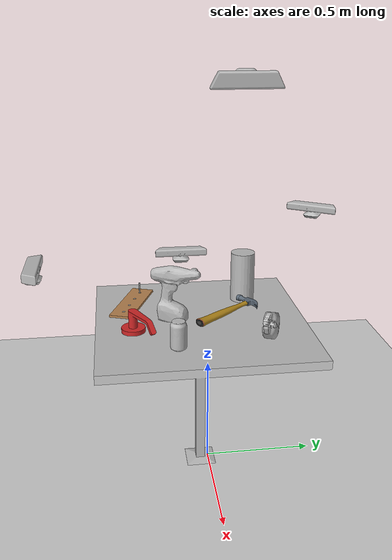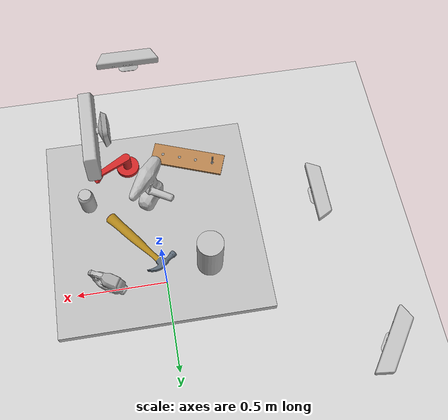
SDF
<sdf version="1.7">
 <world name="default">
  <light name="sun" type="directional">
   <pose>0 0 10 0 -0 0</pose>
   <diffuse>0.8 0.8 0.8 1</diffuse>
   <specular>0.2 0.2 0.2 1</specular>
   <attenuation>
    <range>1000</range>
    <constant>0.9</constant>
    <linear>0.01</linear>
    <quadratic>0.001</quadratic>
   </attenuation>
   <direction>-0.5 0.1 -0.9</direction>
   <spot><inner_angle>0</inner_angle><outer_angle>0</outer_angle><falloff>0</falloff></spot>
  </light>
  <model name="ground_plane">
   <static>1</static>
   <link name="link">
    <collision name="collision">
     <geometry><plane><normal>0 0 1</normal><size>100 100</size></plane></geometry>
     <surface><friction><ode><mu>100</mu><mu2>50</mu2></ode></friction></surface>
    </collision>
    <visual name="visual">
     <cast_shadows>0</cast_shadows>
     <geometry><plane><normal>0 0 1</normal><size>100 100</size></plane></geometry>
     <material>
      <script><uri>file://media/materials/scripts/gazebo.material</uri><name>Gazebo/Grey</name></script>
     </material>
    </visual>
   </link>
  </model>
  <gravity>0 0 -9.8</gravity>
  <magnetic_field>6e-06 2.3e-05 -4.2e-05</magnetic_field>
  <atmosphere type="adiabatic"/>
  <physics type="ode">
   <max_step_size>0.001</max_step_size>
   <real_time_factor>1</real_time_factor>
   <real_time_update_rate>1000</real_time_update_rate>
  </physics>
  <scene><ambient>0.4 0.4 0.4 1</ambient><background>0.7 0.7 0.7 1</background><shadows>1</shadows></scene>
  <spherical_coordinates>
   <surface_model>EARTH_WGS84</surface_model>
   <latitude_deg>0</latitude_deg>
   <longitude_deg>0</longitude_deg>
   <elevation>0</elevation>
   <heading_deg>0</heading_deg>
  </spherical_coordinates>
  <model name="cafe_table">
   <static>1</static>
   <link name="link">
    <collision name="surface">
     <pose>0 0 0.755 0 -0 0</pose>
     <geometry><box><size>0.913 0.913 0.04</size></box></geometry>
    </collision>
    <collision name="column">
     <pose>0 0 0.37 0 -0 0</pose>
     <geometry><box><size>0.042 0.042 0.74</size></box></geometry>
    </collision>
    <collision name="base">
     <pose>0 0 0.02 0 -0 0</pose>
     <geometry><box><size>0.56 0.56 0.04</size></box></geometry>
    </collision>
    <visual name="visual">
     <geometry><mesh><uri>model://cafe_table/meshes/cafe_table.dae</uri></mesh></geometry>
    </visual>
   </link>
   <pose>0.00837 -0.036719 -0.04443 0 -0 0</pose>
  </model>
  <model name="beer">
   <link name="link">
    <pose>0 0 0.115 0 -0 0</pose>
    <inertial>
     <mass>0.39</mass>
     <inertia><ixx>0.00058</ixx><ixy>0</ixy><ixz>0</ixz><iyy>0.00058</iyy><iyz>0</iyz><izz>0.00019</izz></inertia>
    </inertial>
    <collision name="collision">
     <geometry><cylinder><radius>0.055</radius><length>0.23</length></cylinder></geometry>
    </collision>
    <visual name="visual">
     <geometry><cylinder><radius>0.055</radius><length>0.23</length></cylinder></geometry>
     <material>
      <script>
       <uri>model://beer/materials/scripts</uri>
       <uri>model://beer/materials/textures</uri>
       <name>Beer/Diffuse</name>
      </script>
     </material>
    </visual>
   </link>
   <pose>-0.201268 0.190471 0.730562 1e-06 -2.6e-05 -0.043566</pose>
  </model>
  <model name="hammer">
   <static>1</static>
   <link name="link">
    <collision name="collision">
     <geometry><mesh><uri>model://hammer/meshes/hammer.dae</uri></mesh></geometry>
    </collision>
    <visual name="visual"><geometry><mesh><uri>model://hammer/meshes/hammer.dae</uri></mesh></geometry></visual>
   </link>
   <pose>0.041273 0.114904 0.798165 0 -0 0.671982</pose>
  </model>
  <model name="pr2_gripper">
   <pose>-0.146313 1.33047 0.530983 1.62042 -0.541628 -0.50933</pose>
   <link name="r_wrist_roll_link">
    <pose>0.771 -0.188 0.790675 0 -0 0</pose>
    <inertial>
     <pose>0.056408 0.000451 -0.001014 0 -0 0</pose>
     <inertia>
      <ixx>0.011352</ixx>
      <ixy>-1.6e-05</ixy>
      <ixz>-1e-06</ixz>
      <iyy>0.011677</iyy>
      <iyz>-1e-06</iyz>
      <izz>0.011866</izz>
     </inertia>
     <mass>0.68107</mass>
    </inertial>
    <collision name="r_wrist_roll_link_geom">
     <geometry>
      <mesh>
       <uri>model://pr2/meshes/forearm_v0/wrist_roll_L.stl</uri>
       <scale>1 1 1</scale>
       <uri>__default__</uri>
      </mesh>
     </geometry>
     <surface>
      <friction><ode><mu>-1</mu><mu2>-1</mu2><fdir1>0 0 0</fdir1><slip1>0</slip1><slip2>0</slip2></ode></friction>
      <bounce><restitution_coefficient>0</restitution_coefficient><threshold>100000</threshold></bounce>
      <contact>
       <ode>
        <soft_cfm>0</soft_cfm>
        <soft_erp>0.2</soft_erp>
        <kp>1e+12</kp>
        <kd>1</kd>
        <max_vel>0</max_vel>
        <min_depth>0.001</min_depth>
       </ode>
      </contact>
     </surface>
    </collision>
    <visual name="r_wrist_roll_link_geom_visual">
     <geometry>
      <mesh><uri>model://pr2/meshes/forearm_v0/wrist_roll.stl</uri><scale>1 1 1</scale><uri>__default__</uri></mesh>
     </geometry>
     <material><script><name>__default__</name><uri>__default__</uri></script></material>
    </visual>
    <visual name="r_wrist_roll_link_geom_r_gripper_palm_link_visual">
     <geometry>
      <mesh>
       <uri>model://pr2/meshes/gripper_v0/gripper_palm.dae</uri>
       <scale>1 1 1</scale>
       <uri>__default__</uri>
      </mesh>
     </geometry>
    </visual>
   </link>
   <link name="r_gripper_l_finger_link">
    <pose>0.84791 -0.178 0.790675 0 -0 0</pose>
    <inertial>
     <pose>0.03598 0.0173 -0.00164 0 -0 0</pose>
     <inertia>
      <ixx>7.8e-05</ixx>
      <ixy>1e-06</ixy>
      <ixz>-1e-05</ixz>
      <iyy>0.000197</iyy>
      <iyz>-3e-06</iyz>
      <izz>0.000181</izz>
     </inertia>
     <mass>0.17126</mass>
    </inertial>
    <collision name="r_gripper_l_finger_link_geom">
     <geometry>
      <mesh><uri>model://pr2/meshes/gripper_v0/l_finger.stl</uri><scale>1 1 1</scale><uri>__default__</uri></mesh>
     </geometry>
     <surface>
      <friction><ode><mu>500</mu><mu2>500</mu2><fdir1>0 0 0</fdir1><slip1>0</slip1><slip2>0</slip2></ode></friction>
      <bounce><restitution_coefficient>0</restitution_coefficient><threshold>100000</threshold></bounce>
      <contact>
       <ode>
        <soft_cfm>0</soft_cfm>
        <soft_erp>0.2</soft_erp>
        <kp>1e+06</kp>
        <kd>1</kd>
        <max_vel>0</max_vel>
        <min_depth>0.001</min_depth>
       </ode>
      </contact>
     </surface>
    </collision>
    <visual name="r_gripper_l_finger_link_geom_visual">
     <geometry>
      <mesh><uri>model://pr2/meshes/gripper_v0/l_finger.dae</uri><scale>1 1 1</scale><uri>__default__</uri></mesh>
     </geometry>
    </visual>
   </link>
   <link name="r_gripper_l_finger_tip_link">
    <pose>0.93928 -0.17305 0.790675 0 -0 0</pose>
    <inertial>
     <pose>0.00423 0.00284 0 0 -0 0</pose>
     <inertia><ixx>8e-06</ixx><ixy>6e-06</ixy><ixz>0</ixz><iyy>1e-05</iyy><iyz>0</iyz><izz>1.5e-05</izz></inertia>
     <mass>0.04419</mass>
    </inertial>
    <collision name="r_gripper_l_finger_tip_link_geom">
     <geometry>
      <mesh>
       <uri>model://pr2/meshes/gripper_v0/l_finger_tip.stl</uri>
       <scale>1 1 1</scale>
       <uri>__default__</uri>
      </mesh>
     </geometry>
     <surface>
      <friction><ode><mu>500</mu><mu2>500</mu2><fdir1>0 0 0</fdir1><slip1>0</slip1><slip2>0</slip2></ode></friction>
      <bounce><restitution_coefficient>0</restitution_coefficient><threshold>100000</threshold></bounce>
      <contact>
       <ode>
        <soft_cfm>0</soft_cfm>
        <soft_erp>0.2</soft_erp>
        <kp>1e+07</kp>
        <kd>1</kd>
        <max_vel>0</max_vel>
        <min_depth>0.001</min_depth>
       </ode>
      </contact>
     </surface>
    </collision>
    <visual name="r_gripper_l_finger_tip_link_geom_visual">
     <geometry>
      <mesh>
       <uri>model://pr2/meshes/gripper_v0/l_finger_tip.dae</uri>
       <scale>1 1 1</scale>
       <uri>__default__</uri>
      </mesh>
     </geometry>
    </visual>
    <sensor name="r_gripper_l_finger_tip_contact_sensor" type="contact">
     <contact><collision>r_gripper_l_finger_tip_link_geom</collision><topic>__default_topic__</topic></contact>
     <always_on>0</always_on>
     <update_rate>100</update_rate>
     <visualize>0</visualize>
    </sensor>
   </link>
   <link name="r_gripper_motor_slider_link">
    <pose>0.93928 -0.188 0.790675 0 -0 0</pose>
    <inertial>
     <inertia><ixx>0.001</ixx><ixy>0</ixy><ixz>0</ixz><iyy>0.001</iyy><iyz>0</iyz><izz>0.001</izz></inertia>
     <mass>0.01</mass>
    </inertial>
   </link>
   <link name="r_gripper_motor_screw_link">
    <pose>0.93928 -0.188 0.790675 0 -0 0</pose>
    <inertial>
     <inertia><ixx>0.0001</ixx><ixy>0</ixy><ixz>0</ixz><iyy>0.0001</iyy><iyz>0</iyz><izz>0.0001</izz></inertia>
     <mass>0.01</mass>
    </inertial>
   </link>
   <link name="r_gripper_r_finger_link">
    <pose>0.84791 -0.198 0.790675 0 -0 0</pose>
    <inertial>
     <pose>0.03576 -0.01736 -0.00095 0 -0 0</pose>
     <inertia>
      <ixx>7.7e-05</ixx>
      <ixy>-2e-06</ixy>
      <ixz>-8e-06</ixz>
      <iyy>0.000198</iyy>
      <iyz>2e-06</iyz>
      <izz>0.000181</izz>
     </inertia>
     <mass>0.17389</mass>
    </inertial>
    <collision name="r_gripper_r_finger_link_geom">
     <pose>0 0 0 -3.14159 -0 0</pose>
     <geometry>
      <mesh><uri>model://pr2/meshes/gripper_v0/l_finger.stl</uri><scale>1 1 1</scale><uri>__default__</uri></mesh>
     </geometry>
     <surface>
      <friction><ode><mu>500</mu><mu2>500</mu2><fdir1>0 0 0</fdir1><slip1>0</slip1><slip2>0</slip2></ode></friction>
      <bounce><restitution_coefficient>0</restitution_coefficient><threshold>100000</threshold></bounce>
      <contact>
       <ode>
        <soft_cfm>0</soft_cfm>
        <soft_erp>0.2</soft_erp>
        <kp>1e+06</kp>
        <kd>1</kd>
        <max_vel>0</max_vel>
        <min_depth>0.001</min_depth>
       </ode>
      </contact>
     </surface>
    </collision>
    <visual name="r_gripper_r_finger_link_geom_visual">
     <pose>0 0 0 -3.14159 0 0</pose>
     <geometry>
      <mesh><uri>model://pr2/meshes/gripper_v0/l_finger.dae</uri><scale>1 1 1</scale><uri>__default__</uri></mesh>
     </geometry>
    </visual>
   </link>
   <link name="r_gripper_r_finger_tip_link">
    <pose>0.93928 -0.20295 0.790675 0 -0 0</pose>
    <inertial>
     <pose>0.00423 -0.00284 0 0 -0 0</pose>
     <inertia><ixx>8e-06</ixx><ixy>-6e-06</ixy><ixz>0</ixz><iyy>1e-05</iyy><iyz>0</iyz><izz>1.5e-05</izz></inertia>
     <mass>0.04419</mass>
    </inertial>
    <collision name="r_gripper_r_finger_tip_link_geom">
     <pose>0 0 0 -3.14159 -0 0</pose>
     <geometry>
      <mesh>
       <uri>model://pr2/meshes/gripper_v0/l_finger_tip.stl</uri>
       <scale>1 1 1</scale>
       <uri>__default__</uri>
      </mesh>
     </geometry>
     <surface>
      <friction><ode><mu>500</mu><mu2>500</mu2><fdir1>0 0 0</fdir1><slip1>0</slip1><slip2>0</slip2></ode></friction>
      <bounce><restitution_coefficient>0</restitution_coefficient><threshold>100000</threshold></bounce>
      <contact>
       <ode>
        <soft_cfm>0</soft_cfm>
        <soft_erp>0.2</soft_erp>
        <kp>1e+07</kp>
        <kd>1</kd>
        <max_vel>0</max_vel>
        <min_depth>0.001</min_depth>
       </ode>
      </contact>
     </surface>
    </collision>
    <visual name="r_gripper_r_finger_tip_link_geom_visual">
     <pose>0 0 0 -3.14159 0 0</pose>
     <geometry>
      <mesh>
       <uri>model://pr2/meshes/gripper_v0/l_finger_tip.dae</uri>
       <scale>1 1 1</scale>
       <uri>__default__</uri>
      </mesh>
     </geometry>
    </visual>
    <sensor name="r_gripper_r_finger_tip_contact_sensor" type="contact">
     <contact><collision>r_gripper_r_finger_tip_link_geom</collision><topic>__default_topic__</topic></contact>
     <always_on>0</always_on>
     <update_rate>100</update_rate>
     <visualize>0</visualize>
    </sensor>
   </link>
   <link name="torso_lift_motor_screw_link">
    <pose>-0.15 0 0.751 0 -0 0</pose>
    <inertial>
     <inertia><ixx>0.001</ixx><ixy>0</ixy><ixz>0</ixz><iyy>0.001</iyy><iyz>0</iyz><izz>0.001</izz></inertia>
     <mass>1</mass>
    </inertial>
   </link>
   <link name="r_gripper_l_parallel_link">
    <pose>0.82991 -0.157 0.790675 0 -0 0</pose>
    <inertial>
     <pose>0.03598 0.0173 -0.00164 0 -0 0</pose>
     <inertia>
      <ixx>7.8e-05</ixx>
      <ixy>1e-06</ixy>
      <ixz>-1e-05</ixz>
      <iyy>0.000197</iyy>
      <iyz>-3e-06</iyz>
      <izz>0.000181</izz>
     </inertia>
     <mass>0.17126</mass>
    </inertial>
   </link>
   <link name="r_gripper_r_parallel_link">
    <pose>0.82991 -0.219 0.790675 0 -0 0</pose>
    <inertial>
     <pose>0.03576 -0.01736 -0.00095 0 -0 0</pose>
     <inertia>
      <ixx>7.7e-05</ixx>
      <ixy>-2e-06</ixy>
      <ixz>-8e-06</ixz>
      <iyy>0.000198</iyy>
      <iyz>2e-06</iyz>
      <izz>0.000181</izz>
     </inertia>
     <mass>0.17389</mass>
    </inertial>
   </link>
   <joint name="r_gripper_l_finger_joint" type="revolute">
    <parent>r_wrist_roll_link</parent>
    <child>r_gripper_l_finger_link</child>
    <axis>
     <dynamics>
      <damping>0.02</damping>
      <friction>0</friction>
      <spring_reference>0</spring_reference>
      <spring_stiffness>0</spring_stiffness>
     </dynamics>
     <limit><lower>0</lower><upper>0.548</upper><effort>0</effort><velocity>0</velocity></limit>
     <xyz expressed_in="__model__">0 0 1</xyz>
    </axis>
   </joint>
   <joint name="r_gripper_l_finger_tip_joint" type="revolute">
    <parent>r_gripper_l_finger_link</parent>
    <child>r_gripper_l_finger_tip_link</child>
    <axis>
     <dynamics>
      <damping>0.001</damping>
      <friction>0</friction>
      <spring_reference>0</spring_reference>
      <spring_stiffness>0</spring_stiffness>
     </dynamics>
     <limit><lower>0</lower><upper>0.548</upper><effort>0</effort><velocity>0</velocity></limit>
     <xyz expressed_in="__model__">0 0 -1</xyz>
    </axis>
   </joint>
   <joint name="r_gripper_motor_slider_joint" type="prismatic">
    <parent>r_wrist_roll_link</parent>
    <child>r_gripper_motor_slider_link</child>
    <axis>
     <dynamics>
      <damping>0</damping>
      <friction>0</friction>
      <spring_reference>0</spring_reference>
      <spring_stiffness>0</spring_stiffness>
     </dynamics>
     <limit><lower>-0.1</lower><upper>0.1</upper><effort>0</effort><velocity>0</velocity></limit>
     <xyz expressed_in="__model__">1 0 0</xyz>
    </axis>
   </joint>
   <joint name="r_gripper_motor_screw_joint" type="revolute">
    <parent>r_gripper_motor_slider_link</parent>
    <child>r_gripper_motor_screw_link</child>
    <axis>
     <dynamics>
      <damping>0.0001</damping>
      <friction>0</friction>
      <spring_reference>0</spring_reference>
      <spring_stiffness>0</spring_stiffness>
     </dynamics>
     <limit><lower>-1e+16</lower><upper>1e+16</upper><effort>0</effort><velocity>0</velocity></limit>
     <xyz expressed_in="__model__">0 1 0</xyz>
    </axis>
   </joint>
   <joint name="r_gripper_r_finger_joint" type="revolute">
    <parent>r_wrist_roll_link</parent>
    <child>r_gripper_r_finger_link</child>
    <axis>
     <dynamics>
      <damping>0.02</damping>
      <friction>0</friction>
      <spring_reference>0</spring_reference>
      <spring_stiffness>0</spring_stiffness>
     </dynamics>
     <limit><lower>0</lower><upper>0.548</upper><effort>0</effort><velocity>0</velocity></limit>
     <xyz expressed_in="__model__">0 0 -1</xyz>
    </axis>
   </joint>
   <joint name="r_gripper_r_finger_tip_joint" type="revolute">
    <parent>r_gripper_r_finger_link</parent>
    <child>r_gripper_r_finger_tip_link</child>
    <axis>
     <dynamics>
      <damping>0.001</damping>
      <friction>0</friction>
      <spring_reference>0</spring_reference>
      <spring_stiffness>0</spring_stiffness>
     </dynamics>
     <limit><lower>0</lower><upper>0.548</upper><effort>0</effort><velocity>0</velocity></limit>
     <xyz expressed_in="__model__">0 0 1</xyz>
    </axis>
   </joint>
   <joint name="r_gripper_r_screw_screw_joint" type="screw">
    <parent>r_gripper_r_finger_tip_link</parent>
    <child>r_gripper_motor_screw_link</child>
    <thread_pitch>-3141.6</thread_pitch>
    <axis>
     <dynamics>
      <damping>0</damping>
      <friction>0</friction>
      <spring_reference>0</spring_reference>
      <spring_stiffness>0</spring_stiffness>
     </dynamics>
     <limit><lower>-1e+16</lower><upper>1e+16</upper><effort>0</effort><velocity>0</velocity></limit>
     <xyz expressed_in="__model__">0 1 0</xyz>
    </axis>
   </joint>
   <joint name="r_gripper_l_screw_screw_joint" type="screw">
    <parent>r_gripper_l_finger_tip_link</parent>
    <child>r_gripper_motor_screw_link</child>
    <thread_pitch>3141.6</thread_pitch>
    <axis>
     <dynamics>
      <damping>0</damping>
      <friction>0</friction>
      <spring_reference>0</spring_reference>
      <spring_stiffness>0</spring_stiffness>
     </dynamics>
     <limit><lower>-1e+16</lower><upper>1e+16</upper><effort>0</effort><velocity>0</velocity></limit>
     <xyz expressed_in="__model__">0 1 0</xyz>
    </axis>
   </joint>
   <joint name="r_gripper_r_parallel_root_joint" type="revolute">
    <pose>0.05891 -0.031 0 0 -0 0</pose>
    <parent>r_gripper_r_parallel_link</parent>
    <child>r_wrist_roll_link</child>
    <axis>
     <dynamics>
      <damping>0.2</damping>
      <friction>0</friction>
      <spring_reference>0</spring_reference>
      <spring_stiffness>0</spring_stiffness>
     </dynamics>
     <limit><lower>-1e+16</lower><upper>1e+16</upper><effort>0</effort><velocity>0</velocity></limit>
     <xyz expressed_in="__model__">0 0 -1</xyz>
    </axis>
   </joint>
   <joint name="r_gripper_l_parallel_root_joint" type="revolute">
    <pose>0.05891 0.031 0 0 -0 0</pose>
    <parent>r_gripper_l_parallel_link</parent>
    <child>r_wrist_roll_link</child>
    <axis>
     <dynamics>
      <damping>0.2</damping>
      <friction>0</friction>
      <spring_reference>0</spring_reference>
      <spring_stiffness>0</spring_stiffness>
     </dynamics>
     <limit><lower>-1e+16</lower><upper>1e+16</upper><effort>0</effort><velocity>0</velocity></limit>
     <xyz expressed_in="__model__">0 0 1</xyz>
    </axis>
   </joint>
   <joint name="r_gripper_r_parallel_tip_joint" type="revolute">
    <pose>-0.018 -0.021 0 0 -0 0</pose>
    <parent>r_gripper_r_parallel_link</parent>
    <child>r_gripper_r_finger_tip_link</child>
    <axis>
     <dynamics>
      <damping>0</damping>
      <friction>0</friction>
      <spring_reference>0</spring_reference>
      <spring_stiffness>0</spring_stiffness>
     </dynamics>
     <limit><lower>-1e+16</lower><upper>1e+16</upper><effort>0</effort><velocity>0</velocity></limit>
     <xyz expressed_in="__model__">0 0 1</xyz>
    </axis>
   </joint>
   <joint name="r_gripper_l_parallel_tip_joint" type="revolute">
    <pose>-0.018 0.021 0 0 -0 0</pose>
    <parent>r_gripper_l_parallel_link</parent>
    <child>r_gripper_l_finger_tip_link</child>
    <axis>
     <dynamics>
      <damping>0</damping>
      <friction>0</friction>
      <spring_reference>0</spring_reference>
      <spring_stiffness>0</spring_stiffness>
     </dynamics>
     <limit><lower>-1e+16</lower><upper>1e+16</upper><effort>0</effort><velocity>0</velocity></limit>
     <xyz expressed_in="__model__">0 0 1</xyz>
    </axis>
   </joint>
   <joint name="r_gripper_joint" type="prismatic">
    <parent>r_gripper_r_finger_tip_link</parent>
    <child>r_gripper_l_finger_tip_link</child>
    <axis>
     <dynamics>
      <damping>0</damping>
      <friction>0</friction>
      <spring_reference>0</spring_reference>
      <spring_stiffness>0</spring_stiffness>
     </dynamics>
     <limit><lower>-1e+16</lower><upper>1e+16</upper><effort>0</effort><velocity>0</velocity></limit>
     <xyz expressed_in="__model__">0 1 0</xyz>
    </axis>
   </joint>
   <static>0</static>
  </model>
  <model name="coke_can">
   <link name="link">
    <inertial>
     <pose>0 0 0.06 0 -0 0</pose>
     <mass>0.39</mass>
     <inertia>
      <ixx>0.00055575</ixx>
      <ixy>0</ixy>
      <ixz>0</ixz>
      <iyy>0.00055575</iyy>
      <iyz>0</iyz>
      <izz>0.0001755</izz>
     </inertia>
    </inertial>
    <collision name="collision">
     <pose>0.003937 0.004724 -0.18 0 -0 0</pose>
     <geometry><mesh><uri>model://coke_can/meshes/coke_can.dae</uri></mesh></geometry>
     <surface>
      <friction><ode><mu>1</mu><mu2>1</mu2></ode></friction>
      <contact><ode><kp>1e+07</kp><kd>1</kd><min_depth>0.001</min_depth><max_vel>0.1</max_vel></ode></contact>
     </surface>
    </collision>
    <visual name="visual">
     <pose>0.003937 0.004724 -0.18 0 -0 0</pose>
     <geometry><mesh><uri>model://coke_can/meshes/coke_can.dae</uri></mesh></geometry>
    </visual>
   </link>
   <pose>0.287288 -0.15983 0.728001 -0.010452 0.003735 0.009027</pose>
  </model>
  <model name="drill">
   <link name="link">
    <inertial>
     <pose>-0.00637 -0.008 0.13254 0 -0 0</pose>
     <inertia>
      <ixx>0.0133113</ixx>
      <ixy>-0.00030365</ixy>
      <ixz>-0.00034148</ixz>
      <iyy>0.0115766</iyy>
      <iyz>0.00088073</iyz>
      <izz>0.00378028</izz>
     </inertia>
     <mass>1.50252</mass>
    </inertial>
    <collision name="collision">
     <pose>0 0 -0.09 0 -0 0</pose>
     <geometry><mesh><uri>model://cordless_drill/meshes/cordless_drill.stl</uri></mesh></geometry>
     <surface><contact><ode><max_vel>0.1</max_vel><min_depth>0.001</min_depth></ode></contact></surface>
    </collision>
    <visual name="visual">
     <pose>0 0 -0.09 0 -0 0</pose>
     <geometry><mesh><uri>model://cordless_drill/meshes/cordless_drill.dae</uri></mesh></geometry>
    </visual>
   </link>
   <pose>0.017156 -0.152005 0.728499 0.000134 -0.000218 -0.610176</pose>
  </model>
  <model name="kinect_ros">
   <pose>-0.694527 -0.044949 0.801764 0 -0 0</pose>
   <link name="link">
    <inertial>
     <mass>0.1</mass>
     <inertia><ixx>1</ixx><ixy>0</ixy><ixz>0</ixz><iyy>1</iyy><iyz>0</iyz><izz>1</izz></inertia>
    </inertial>
    <collision name="collision"><geometry><box><size>0.073 0.276 0.072</size></box></geometry></collision>
    <visual name="visual"><geometry><mesh><uri>model://kinect/meshes/kinect.dae</uri></mesh></geometry></visual>
    <sensor name="stereocamera" type="multicamera">
     <always_on>1</always_on>
     <update_rate>10</update_rate>
     <visualize>0</visualize>
     <camera name="left">
      <horizontal_fov>1.047</horizontal_fov>
      <image><width>320</width><height>240</height></image>
      <clip><near>0.1</near><far>100</far></clip>
     </camera>
     <camera name="right">
      <pose>0 -0.07 0 0 -0 0</pose>
      <horizontal_fov>1.047</horizontal_fov>
      <image><width>320</width><height>240</height></image>
      <clip><near>0.1</near><far>100</far></clip>
     </camera>
     <plugin name="stereo_camera_controller" filename="libgazebo_ros_multicamera.so">
      <cameraName>stereocamera</cameraName>
      <alwaysOn>1</alwaysOn>
      <updateRate>10</updateRate>
      <cameraName>stereocamera</cameraName>
      <imageTopicName>image_raw</imageTopicName>
      <cameraInfoTopicName>camera_info</cameraInfoTopicName>
      <frameName>camera_link_optical</frameName>
      <baseline>0.07</baseline>
      <distortion_k1>0.0</distortion_k1>
      <distortion_k2>0.0</distortion_k2>
      <distortion_k3>0.0</distortion_k3>
      <distortion_t1>0.0</distortion_t1>
      <distortion_t2>0.0</distortion_t2>
     </plugin>
    </sensor>
    <sensor name="camera" type="depth">
     <always_on>1</always_on>
     <update_rate>30</update_rate>
     <camera>
      <horizontal_fov>1.39626</horizontal_fov>
      <image><format>B8G8R8</format><width>640</width><height>480</height></image>
      <clip><near>0.4</near><far>16</far></clip>
     </camera>
     <plugin name="camera_plugin" filename="libgazebo_ros_openni_kinect.so">
      <baseline>0.2</baseline>
      <alwaysOn>1</alwaysOn>
      <updateRate>0.0</updateRate>
      <cameraName>camera_ir</cameraName>
      <imageTopicName>/camera/color/image_raw</imageTopicName>
      <cameraInfoTopicName>/camera/color/camera_info</cameraInfoTopicName>
      <depthImageTopicName>/camera/depth/image_raw</depthImageTopicName>
      <depthImageCameraInfoTopicName>/camera/depth/camera_info</depthImageCameraInfoTopicName>
      <pointCloudTopicName>/camera/depth/points</pointCloudTopicName>
      <frameName>camera_link</frameName>
      <pointCloudCutoff>0.5</pointCloudCutoff>
      <pointCloudCutoffMax>8.0</pointCloudCutoffMax>
      <distortionK1>0</distortionK1>
      <distortionK2>0</distortionK2>
      <distortionK3>0</distortionK3>
      <distortionT1>0</distortionT1>
      <distortionT2>0</distortionT2>
      <CxPrime>0</CxPrime>
      <Cx>0</Cx>
      <Cy>0</Cy>
      <focalLength>0</focalLength>
      <hackBaseline>0</hackBaseline>
     </plugin>
    </sensor>
    <gravity>0</gravity>
   </link>
  </model>
  <model name="kinect_ros_0">
   <pose>0.132627 0.120985 1.70012 3.11041 1.53745 3.11028</pose>
   <link name="link">
    <inertial>
     <mass>0.1</mass>
     <inertia><ixx>1</ixx><ixy>0</ixy><ixz>0</ixz><iyy>1</iyy><iyz>0</iyz><izz>1</izz></inertia>
    </inertial>
    <collision name="collision"><geometry><box><size>0.073 0.276 0.072</size></box></geometry></collision>
    <visual name="visual"><geometry><mesh><uri>model://kinect/meshes/kinect.dae</uri></mesh></geometry></visual>
    <sensor name="stereocamera" type="multicamera">
     <always_on>1</always_on>
     <update_rate>10</update_rate>
     <visualize>0</visualize>
     <camera name="left">
      <horizontal_fov>1.047</horizontal_fov>
      <image><width>320</width><height>240</height></image>
      <clip><near>0.1</near><far>100</far></clip>
     </camera>
     <camera name="right">
      <pose>0 -0.07 0 0 -0 0</pose>
      <horizontal_fov>1.047</horizontal_fov>
      <image><width>320</width><height>240</height></image>
      <clip><near>0.1</near><far>100</far></clip>
     </camera>
     <plugin name="stereo_camera_controller" filename="libgazebo_ros_multicamera.so">
      <cameraName>stereocamera2</cameraName>
      <alwaysOn>1</alwaysOn>
      <updateRate>10</updateRate>
      <cameraName>stereocamera2</cameraName>
      <imageTopicName>image_raw2</imageTopicName>
      <cameraInfoTopicName>camera_info2</cameraInfoTopicName>
      <frameName>camera_link_optical</frameName>
      <baseline>0.07</baseline>
      <distortion_k1>0.0</distortion_k1>
      <distortion_k2>0.0</distortion_k2>
      <distortion_k3>0.0</distortion_k3>
      <distortion_t1>0.0</distortion_t1>
      <distortion_t2>0.0</distortion_t2>
     </plugin>
    </sensor>
    <sensor name="cameradepth" type="depth">
     <always_on>1</always_on>
     <update_rate>30</update_rate>
     <camera>
      <horizontal_fov>1.39626</horizontal_fov>
      <image><format>B8G8R8</format><width>640</width><height>480</height></image>
      <clip><near>0.4</near><far>16</far></clip>
     </camera>
     <plugin name="camera_plugin" filename="libgazebo_ros_openni_kinect.so">
      <baseline>0.2</baseline>
      <alwaysOn>1</alwaysOn>
      <updateRate>0.0</updateRate>
      <cameraName>camera_ir</cameraName>
      <imageTopicName>/camera/color/image_raw2</imageTopicName>
      <cameraInfoTopicName>/camera/color/camera_info2</cameraInfoTopicName>
      <depthImageTopicName>/camera/depth/image_raw2</depthImageTopicName>
      <depthImageCameraInfoTopicName>/camera/depth/camera_info2</depthImageCameraInfoTopicName>
      <pointCloudTopicName>/camera/depth/points2</pointCloudTopicName>
      <frameName>camera_link</frameName>
      <pointCloudCutoff>0.5</pointCloudCutoff>
      <pointCloudCutoffMax>8.0</pointCloudCutoffMax>
      <distortionK1>0</distortionK1>
      <distortionK2>0</distortionK2>
      <distortionK3>0</distortionK3>
      <distortionT1>0</distortionT1>
      <distortionT2>0</distortionT2>
      <CxPrime>0</CxPrime>
      <Cx>0</Cx>
      <Cy>0</Cy>
      <focalLength>0</focalLength>
      <hackBaseline>0</hackBaseline>
     </plugin>
    </sensor>
    <gravity>0</gravity>
   </link>
  </model>
  <model name="kinect_ros_1">
   <pose>-0.768479 0.676208 1 0 0.076466 -0.60367</pose>
   <link name="link">
    <inertial>
     <mass>0.1</mass>
     <inertia><ixx>1</ixx><ixy>0</ixy><ixz>0</ixz><iyy>1</iyy><iyz>0</iyz><izz>1</izz></inertia>
    </inertial>
    <collision name="collision"><geometry><box><size>0.073 0.276 0.072</size></box></geometry></collision>
    <visual name="visual"><geometry><mesh><uri>model://kinect/meshes/kinect.dae</uri></mesh></geometry></visual>
    <sensor name="stereocamera" type="multicamera">
     <always_on>1</always_on>
     <update_rate>10</update_rate>
     <visualize>0</visualize>
     <camera name="left">
      <horizontal_fov>1.047</horizontal_fov>
      <image><width>320</width><height>240</height></image>
      <clip><near>0.1</near><far>100</far></clip>
     </camera>
     <camera name="right">
      <pose>0 -0.07 0 0 -0 0</pose>
      <horizontal_fov>1.047</horizontal_fov>
      <image><width>320</width><height>240</height></image>
      <clip><near>0.1</near><far>100</far></clip>
     </camera>
     <plugin name="stereo_camera_controller" filename="libgazebo_ros_multicamera.so">
      <cameraName>stereocamera3</cameraName>
      <alwaysOn>1</alwaysOn>
      <updateRate>10</updateRate>
      <cameraName>stereocamera3</cameraName>
      <imageTopicName>image_raw3</imageTopicName>
      <cameraInfoTopicName>camera_info3</cameraInfoTopicName>
      <frameName>camera_link_optical</frameName>
      <baseline>0.07</baseline>
      <distortion_k1>0.0</distortion_k1>
      <distortion_k2>0.0</distortion_k2>
      <distortion_k3>0.0</distortion_k3>
      <distortion_t1>0.0</distortion_t1>
      <distortion_t2>0.0</distortion_t2>
     </plugin>
    </sensor>
    <sensor name="cameradepth" type="depth">
     <always_on>1</always_on>
     <update_rate>30</update_rate>
     <camera>
      <horizontal_fov>1.39626</horizontal_fov>
      <image><format>B8G8R8</format><width>640</width><height>480</height></image>
      <clip><near>0.4</near><far>16</far></clip>
     </camera>
     <plugin name="camera_plugin" filename="libgazebo_ros_openni_kinect.so">
      <baseline>0.2</baseline>
      <alwaysOn>1</alwaysOn>
      <updateRate>0.0</updateRate>
      <cameraName>camera_ir</cameraName>
      <imageTopicName>/camera/color/image_raw3</imageTopicName>
      <cameraInfoTopicName>/camera/color/camera_info3</cameraInfoTopicName>
      <depthImageTopicName>/camera/depth/image_raw3</depthImageTopicName>
      <depthImageCameraInfoTopicName>/camera/depth/camera_info3</depthImageCameraInfoTopicName>
      <pointCloudTopicName>/camera/depth/points3</pointCloudTopicName>
      <frameName>camera_link</frameName>
      <pointCloudCutoff>0.5</pointCloudCutoff>
      <pointCloudCutoffMax>8.0</pointCloudCutoffMax>
      <distortionK1>0</distortionK1>
      <distortionK2>0</distortionK2>
      <distortionK3>0</distortionK3>
      <distortionT1>0</distortionT1>
      <distortionT2>0</distortionT2>
      <CxPrime>0</CxPrime>
      <Cx>0</Cx>
      <Cy>0</Cy>
      <focalLength>0</focalLength>
      <hackBaseline>0</hackBaseline>
     </plugin>
    </sensor>
    <gravity>0</gravity>
   </link>
  </model>
  <model name="kinect_ros_2">
   <pose>0.02608 -0.702481 1 -0 0.040976 1.56446</pose>
   <link name="link">
    <inertial>
     <mass>0.1</mass>
     <inertia><ixx>1</ixx><ixy>0</ixy><ixz>0</ixz><iyy>1</iyy><iyz>0</iyz><izz>1</izz></inertia>
    </inertial>
    <collision name="collision"><geometry><box><size>0.073 0.276 0.072</size></box></geometry></collision>
    <visual name="visual"><geometry><mesh><uri>model://kinect/meshes/kinect.dae</uri></mesh></geometry></visual>
    <sensor name="stereocamera" type="multicamera">
     <always_on>1</always_on>
     <update_rate>10</update_rate>
     <visualize>0</visualize>
     <camera name="left">
      <horizontal_fov>1.047</horizontal_fov>
      <image><width>320</width><height>240</height></image>
      <clip><near>0.1</near><far>100</far></clip>
     </camera>
     <camera name="right">
      <pose>0 -0.07 0 0 -0 0</pose>
      <horizontal_fov>1.047</horizontal_fov>
      <image><width>320</width><height>240</height></image>
      <clip><near>0.1</near><far>100</far></clip>
     </camera>
     <plugin name="stereo_camera_controller" filename="libgazebo_ros_multicamera.so">
      <cameraName>stereocamera4</cameraName>
      <alwaysOn>1</alwaysOn>
      <updateRate>10</updateRate>
      <cameraName>stereocamera4</cameraName>
      <imageTopicName>image_raw4</imageTopicName>
      <cameraInfoTopicName>camera_info4</cameraInfoTopicName>
      <frameName>camera_link_optical</frameName>
      <baseline>0.07</baseline>
      <distortion_k1>0.0</distortion_k1>
      <distortion_k2>0.0</distortion_k2>
      <distortion_k3>0.0</distortion_k3>
      <distortion_t1>0.0</distortion_t1>
      <distortion_t2>0.0</distortion_t2>
     </plugin>
    </sensor>
    <sensor name="cameradepth" type="depth">
     <always_on>1</always_on>
     <update_rate>30</update_rate>
     <camera>
      <horizontal_fov>1.39626</horizontal_fov>
      <image><format>B8G8R8</format><width>640</width><height>480</height></image>
      <clip><near>0.4</near><far>16</far></clip>
     </camera>
     <plugin name="camera_plugin" filename="libgazebo_ros_openni_kinect.so">
      <baseline>0.2</baseline>
      <alwaysOn>1</alwaysOn>
      <updateRate>0.0</updateRate>
      <cameraName>camera_ir</cameraName>
      <imageTopicName>/camera/color/image_raw4</imageTopicName>
      <cameraInfoTopicName>/camera/color/camera_info4</cameraInfoTopicName>
      <depthImageTopicName>/camera/depth/image_raw4</depthImageTopicName>
      <depthImageCameraInfoTopicName>/camera/depth/camera_info4</depthImageCameraInfoTopicName>
      <pointCloudTopicName>/camera/depth/points4</pointCloudTopicName>
      <frameName>camera_link</frameName>
      <pointCloudCutoff>0.5</pointCloudCutoff>
      <pointCloudCutoffMax>8.0</pointCloudCutoffMax>
      <distortionK1>0</distortionK1>
      <distortionK2>0</distortionK2>
      <distortionK3>0</distortionK3>
      <distortionT1>0</distortionT1>
      <distortionT2>0</distortionT2>
      <CxPrime>0</CxPrime>
      <Cx>0</Cx>
      <Cy>0</Cy>
      <focalLength>0</focalLength>
      <hackBaseline>0</hackBaseline>
     </plugin>
    </sensor>
    <gravity>0</gravity>
   </link>
  </model>
  <model name="door_handle_red">
   <link name="handle">
    <inertial>
     <inertia><ixx>1</ixx><ixy>0</ixy><ixz>0</ixz><iyy>1</iyy><iyz>0</iyz><izz>1</izz></inertia>
     <mass>1</mass>
    </inertial>
    <visual name="visual">
     <geometry><mesh><uri>model://door_handle/meshes/door_handle.dae</uri></mesh></geometry>
     <material>
      <shader type="pixel"><normal_map>__default__</normal_map></shader>
      <ambient>0 0 0 1</ambient>
      <diffuse>0 0 0 1</diffuse>
      <specular>0 0 0 1</specular>
      <emissive>0 0 0 1</emissive>
      <script><name>Gazebo/Red</name><uri>__default__</uri></script>
     </material>
    </visual>
    <collision name="collision">
     <geometry>
      <mesh><uri>/home/dd/.gazebo/models/door_handle/meshes/door_handle.dae</uri><scale>1 1 1</scale></mesh>
     </geometry>
     <surface>
      <friction>
       <ode><mu>1</mu><mu2>1</mu2><fdir1>0 0 0</fdir1><slip1>0</slip1><slip2>0</slip2></ode>
       <torsional>
        <coefficient>1</coefficient>
        <patch_radius>0</patch_radius>
        <surface_radius>0</surface_radius>
        <use_patch_radius>1</use_patch_radius>
        <ode><slip>0</slip></ode>
       </torsional>
      </friction>
      <bounce><restitution_coefficient>0</restitution_coefficient><threshold>1e+06</threshold></bounce>
      <contact>
       <collide_without_contact>0</collide_without_contact>
       <collide_without_contact_bitmask>1</collide_without_contact_bitmask>
       <collide_bitmask>1</collide_bitmask>
       <ode>
        <soft_cfm>0</soft_cfm>
        <soft_erp>0.2</soft_erp>
        <kp>1e+13</kp>
        <kd>1</kd>
        <max_vel>0.01</max_vel>
        <min_depth>0</min_depth>
       </ode>
       <bullet>
        <split_impulse>1</split_impulse>
        <split_impulse_penetration_threshold>-0.01</split_impulse_penetration_threshold>
        <soft_cfm>0</soft_cfm>
        <soft_erp>0.2</soft_erp>
        <kp>1e+13</kp>
        <kd>1</kd>
       </bullet>
      </contact>
     </surface>
    </collision>
   </link>
   <static>0</static>
   <pose>0.095533 -0.332853 0.73057 2e-06 -2e-06 0.488183</pose>
  </model>
  <model name="metal_peg_board">
   <frame name="wooden_board::__model__" attached_to="wooden_board::base">
    <pose relative_to="__model__">0 0 0 0 -0 0</pose>
   </frame>
   <link name="wooden_board::base">
    <pose relative_to="wooden_board::__model__">0 0 0.00523 0 -0 0</pose>
    <inertial>
     <mass>0.2765</mass>
     <inertia>
      <ixx>0.0025148</ixx>
      <ixy>0</ixy>
      <ixz>0</ixz>
      <iyy>0.00024037</iyy>
      <iyz>0</iyz>
      <izz>0.00275013</izz>
     </inertia>
    </inertial>
    <collision name="collision">
     <geometry><box><size>0.1016 0.3302 0.01046</size></box></geometry>
     <surface>
      <contact>
       <poissons_ratio>0.347</poissons_ratio>
       <elastic_modulus>8.8e+09</elastic_modulus>
       <ode><kp>100000</kp><kd>100</kd><max_vel>100</max_vel><min_depth>0.001</min_depth></ode>
      </contact>
      <friction>
       <torsional>
        <coefficient>1</coefficient>
        <use_patch_radius>0</use_patch_radius>
        <surface_radius>0.01</surface_radius>
       </torsional>
      </friction>
     </surface>
    </collision>
    <visual name="visual">
     <geometry><box><size>0.1016 0.3302 0.01046</size></box></geometry>
     <material>
      <script><uri>file://media/materials/scripts/gazebo.material</uri><name>Gazebo/Wood</name></script>
     </material>
    </visual>
    <visual name="tee_nut_1">
     <pose>0 -0.116 0 0 -0 0</pose>
     <geometry><cylinder><radius>0.00635</radius><length>0.0105646</length></cylinder></geometry>
     <material>
      <script><uri>file://media/materials/scripts/gazebo.material</uri><name>Gazebo/Grey</name></script>
     </material>
    </visual>
    <visual name="tee_nut_2">
     <pose>0 -0.038 0 0 -0 0</pose>
     <geometry><cylinder><radius>0.00635</radius><length>0.0105646</length></cylinder></geometry>
     <material>
      <script><uri>file://media/materials/scripts/gazebo.material</uri><name>Gazebo/Grey</name></script>
     </material>
    </visual>
    <visual name="tee_nut_3">
     <pose>0 0.038 0 0 -0 0</pose>
     <geometry><cylinder><radius>0.00635</radius><length>0.0105646</length></cylinder></geometry>
     <material>
      <script><uri>file://media/materials/scripts/gazebo.material</uri><name>Gazebo/Grey</name></script>
     </material>
    </visual>
    <visual name="tee_nut_4">
     <pose>0 0.116 0 0 -0 0</pose>
     <geometry><cylinder><radius>0.00635</radius><length>0.0105646</length></cylinder></geometry>
     <material>
      <script><uri>file://media/materials/scripts/gazebo.material</uri><name>Gazebo/Grey</name></script>
     </material>
    </visual>
   </link>
   <frame name="peg::__model__" attached_to="peg::link">
    <pose relative_to="__model__">0 0.116 0 0 -0 0</pose>
   </frame>
   <link name="peg::link">
    <pose relative_to="peg::__model__">0 0 0.031 0 -0 0</pose>
    <inertial>
     <mass>0.0121</mass>
     <inertia>
      <ixx>3.90898e-06</ixx>
      <ixy>0</ixy>
      <ixz>0</ixz>
      <iyy>3.90898e-06</iyy>
      <iyz>0</iyz>
      <izz>6.58845e-08</izz>
     </inertia>
    </inertial>
    <collision name="collision">
     <geometry><cylinder><radius>0.0033</radius><length>0.062</length></cylinder></geometry>
     <surface>
      <contact>
       <poissons_ratio>0.305</poissons_ratio>
       <elastic_modulus>2e+11</elastic_modulus>
       <ode><kp>100000</kp><kd>100</kd><max_vel>100</max_vel><min_depth>0.001</min_depth></ode>
      </contact>
      <friction>
       <torsional>
        <coefficient>1</coefficient>
        <use_patch_radius>0</use_patch_radius>
        <surface_radius>0.01</surface_radius>
       </torsional>
      </friction>
     </surface>
    </collision>
    <visual name="visual">
     <geometry><cylinder><radius>0.0033</radius><length>0.062</length></cylinder></geometry>
     <material>
      <script><uri>file://media/materials/scripts/gazebo.material</uri><name>Gazebo/Grey</name></script>
     </material>
    </visual>
   </link>
   <joint name="board_peg" type="revolute">
    <parent>wooden_board::base</parent>
    <child>peg::link</child>
    <axis>
     <xyz>0 0 1</xyz>
     <limit><upper>0</upper><lower>0</lower></limit>
     <dynamics><spring_reference>0</spring_reference><spring_stiffness>0</spring_stiffness></dynamics>
    </axis>
   </joint>
   <pose>-0.181534 -0.328356 0.738422 0 -0 1.2142</pose>
  </model>
 </world>
</sdf>
